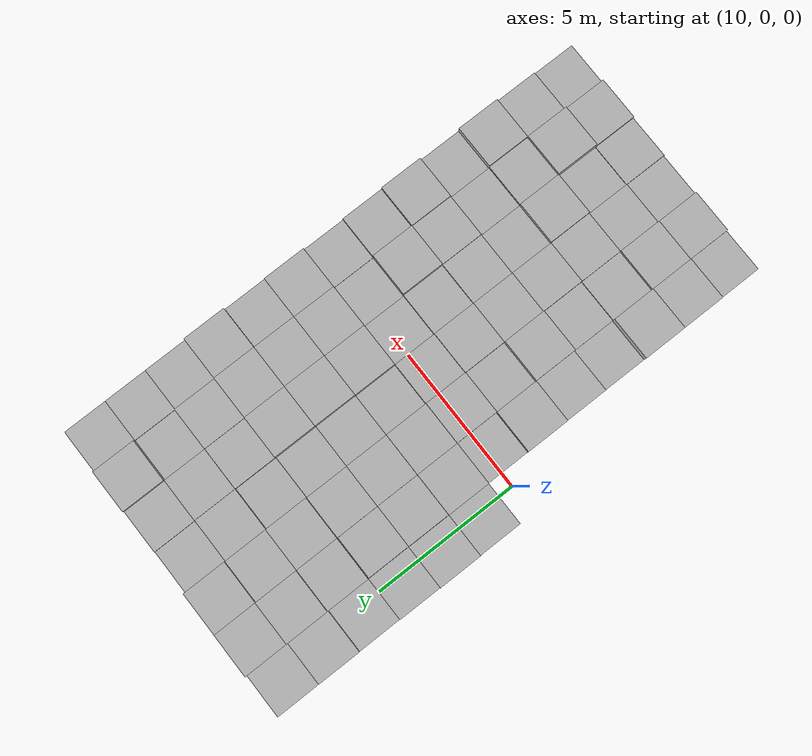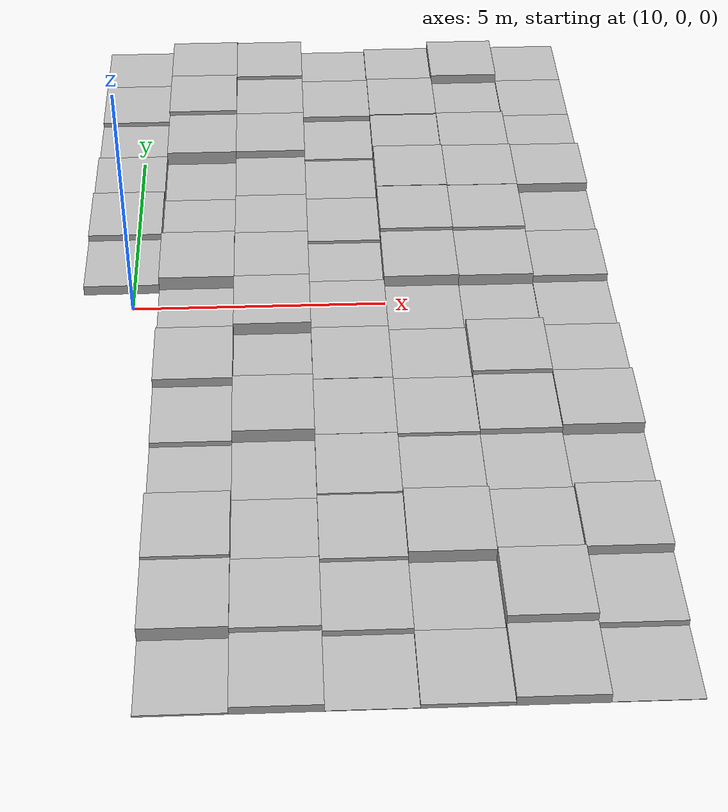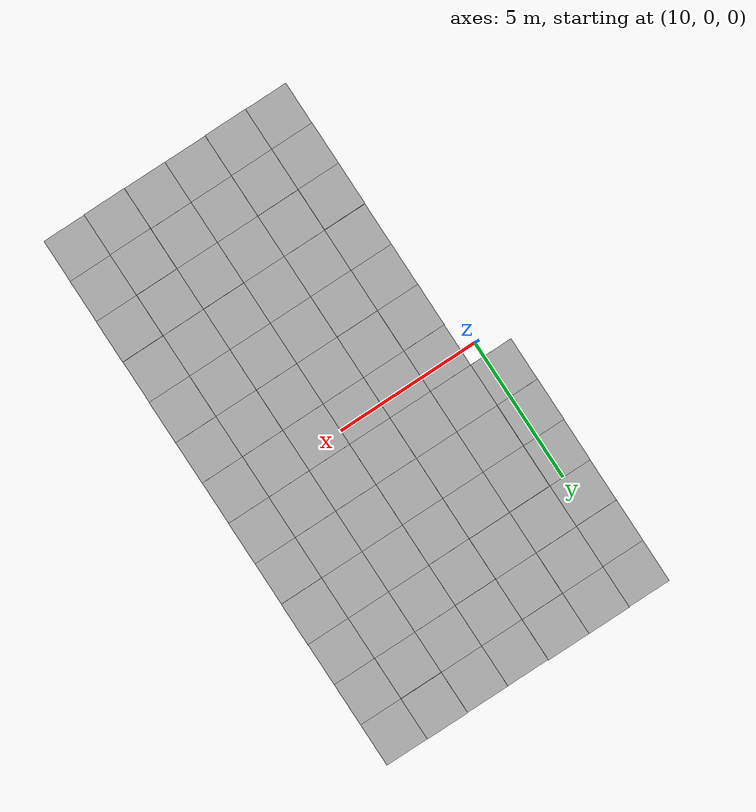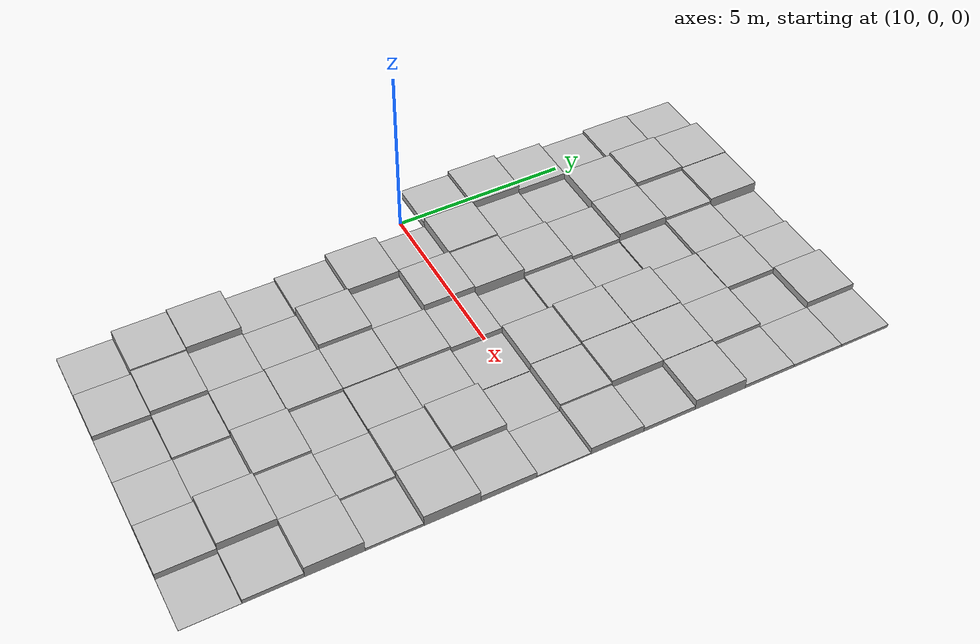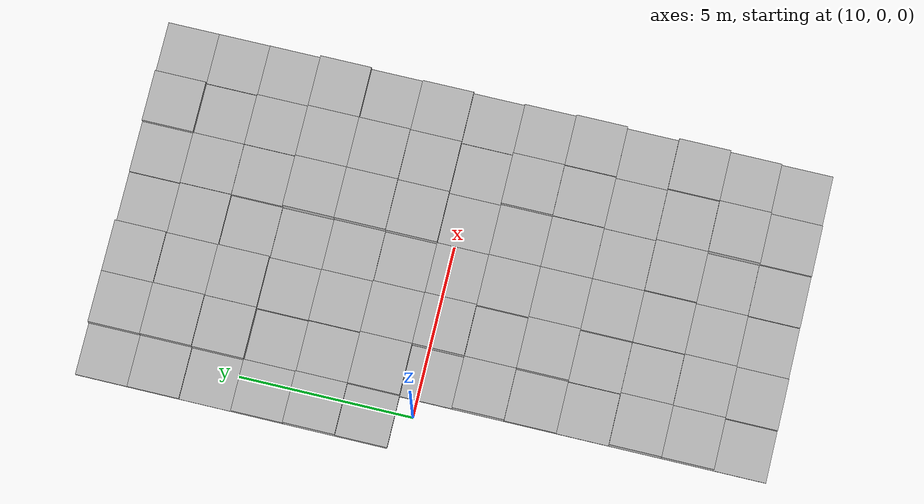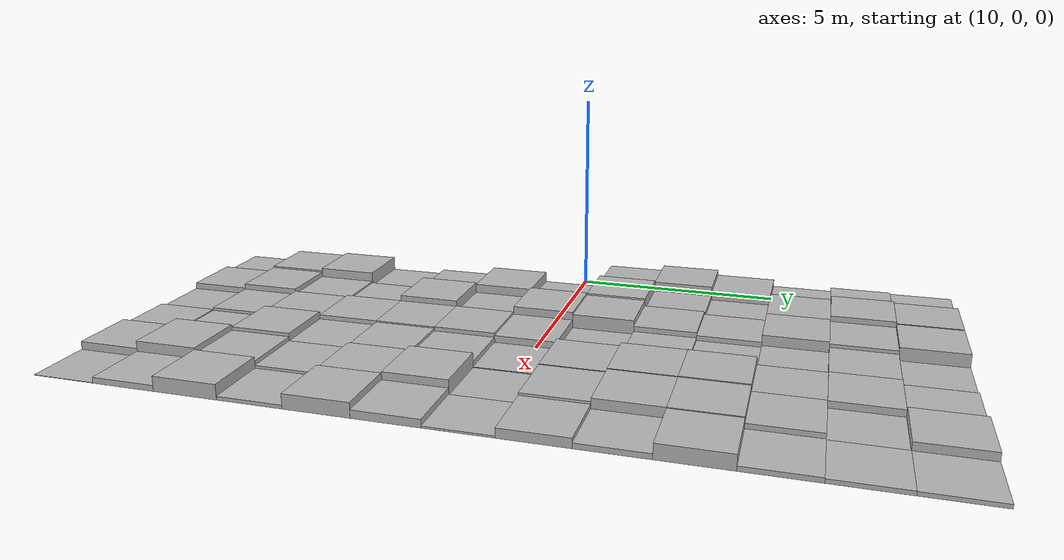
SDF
<sdf version="1.6">
 <model name="uneven_terrain">
  <static>true</static>
  <link name="block_0_7">
   <pose>11.25 -9.25 0.017387766525883232 0 0 0</pose>
   <collision name="collision">
    <geometry><box><size>1.5 1.5 0.034775533051766463</size></box></geometry>
   </collision>
   <visual name="visual">
    <geometry><box><size>1.5 1.5 0.034775533051766463</size></box></geometry>
    <material>
     <script><uri>file://media/materials/scripts/gazebo.material</uri><n>Gazebo/Grey</n></script>
    </material>
   </visual>
  </link>
  <link name="block_0_8">
   <pose>12.75 -9.25 0.08438436393705409 0 0 0</pose>
   <collision name="collision">
    <geometry><box><size>1.5 1.5 0.16876872787410818</size></box></geometry>
   </collision>
   <visual name="visual">
    <geometry><box><size>1.5 1.5 0.16876872787410818</size></box></geometry>
    <material>
     <script><uri>file://media/materials/scripts/gazebo.material</uri><n>Gazebo/Grey</n></script>
    </material>
   </visual>
  </link>
  <link name="block_0_9">
   <pose>14.25 -9.25 0.005959443887614069 0 0 0</pose>
   <collision name="collision">
    <geometry><box><size>1.5 1.5 0.011918887775228138</size></box></geometry>
   </collision>
   <visual name="visual">
    <geometry><box><size>1.5 1.5 0.011918887775228138</size></box></geometry>
    <material>
     <script><uri>file://media/materials/scripts/gazebo.material</uri><n>Gazebo/Grey</n></script>
    </material>
   </visual>
  </link>
  <link name="block_0_10">
   <pose>15.75 -9.25 0.04372759496072068 0 0 0</pose>
   <collision name="collision">
    <geometry><box><size>1.5 1.5 0.08745518992144136</size></box></geometry>
   </collision>
   <visual name="visual">
    <geometry><box><size>1.5 1.5 0.08745518992144136</size></box></geometry>
    <material>
     <script><uri>file://media/materials/scripts/gazebo.material</uri><n>Gazebo/Grey</n></script>
    </material>
   </visual>
  </link>
  <link name="block_0_11">
   <pose>17.25 -9.25 0.10107105762067248 0 0 0</pose>
   <collision name="collision">
    <geometry><box><size>1.5 1.5 0.20214211524134496</size></box></geometry>
   </collision>
   <visual name="visual">
    <geometry><box><size>1.5 1.5 0.20214211524134496</size></box></geometry>
    <material>
     <script><uri>file://media/materials/scripts/gazebo.material</uri><n>Gazebo/Grey</n></script>
    </material>
   </visual>
  </link>
  <link name="block_0_12">
   <pose>18.75 -9.25 0.005307193936772725 0 0 0</pose>
   <collision name="collision">
    <geometry><box><size>1.5 1.5 0.01061438787354545</size></box></geometry>
   </collision>
   <visual name="visual">
    <geometry><box><size>1.5 1.5 0.01061438787354545</size></box></geometry>
    <material>
     <script><uri>file://media/materials/scripts/gazebo.material</uri><n>Gazebo/Grey</n></script>
    </material>
   </visual>
  </link>
  <link name="block_1_7">
   <pose>11.25 -7.75 0.16116385036656158 0 0 0</pose>
   <collision name="collision">
    <geometry><box><size>1.5 1.5 0.32232770073312317</size></box></geometry>
   </collision>
   <visual name="visual">
    <geometry><box><size>1.5 1.5 0.32232770073312317</size></box></geometry>
    <material>
     <script><uri>file://media/materials/scripts/gazebo.material</uri><n>Gazebo/Grey</n></script>
    </material>
   </visual>
  </link>
  <link name="block_1_8">
   <pose>12.75 -7.75 0.13962787899764537 0 0 0</pose>
   <collision name="collision">
    <geometry><box><size>1.5 1.5 0.27925575799529073</size></box></geometry>
   </collision>
   <visual name="visual">
    <geometry><box><size>1.5 1.5 0.27925575799529073</size></box></geometry>
    <material>
     <script><uri>file://media/materials/scripts/gazebo.material</uri><n>Gazebo/Grey</n></script>
    </material>
   </visual>
  </link>
  <link name="block_1_9">
   <pose>14.25 -7.75 0.06805010330359838 0 0 0</pose>
   <collision name="collision">
    <geometry><box><size>1.5 1.5 0.13610020660719677</size></box></geometry>
   </collision>
   <visual name="visual">
    <geometry><box><size>1.5 1.5 0.13610020660719677</size></box></geometry>
    <material>
     <script><uri>file://media/materials/scripts/gazebo.material</uri><n>Gazebo/Grey</n></script>
    </material>
   </visual>
  </link>
  <link name="block_1_10">
   <pose>15.75 -7.75 0.031095899962356312 0 0 0</pose>
   <collision name="collision">
    <geometry><box><size>1.5 1.5 0.062191799924712625</size></box></geometry>
   </collision>
   <visual name="visual">
    <geometry><box><size>1.5 1.5 0.062191799924712625</size></box></geometry>
    <material>
     <script><uri>file://media/materials/scripts/gazebo.material</uri><n>Gazebo/Grey</n></script>
    </material>
   </visual>
  </link>
  <link name="block_1_11">
   <pose>17.25 -7.75 0.19144261444135624 0 0 0</pose>
   <collision name="collision">
    <geometry><box><size>1.5 1.5 0.3828852288827125</size></box></geometry>
   </collision>
   <visual name="visual">
    <geometry><box><size>1.5 1.5 0.3828852288827125</size></box></geometry>
    <material>
     <script><uri>file://media/materials/scripts/gazebo.material</uri><n>Gazebo/Grey</n></script>
    </material>
   </visual>
  </link>
  <link name="block_1_12">
   <pose>18.75 -7.75 0.06731890902252535 0 0 0</pose>
   <collision name="collision">
    <geometry><box><size>1.5 1.5 0.1346378180450507</size></box></geometry>
   </collision>
   <visual name="visual">
    <geometry><box><size>1.5 1.5 0.1346378180450507</size></box></geometry>
    <material>
     <script><uri>file://media/materials/scripts/gazebo.material</uri><n>Gazebo/Grey</n></script>
    </material>
   </visual>
  </link>
  <link name="block_2_7">
   <pose>11.25 -6.25 0.19462315279587414 0 0 0</pose>
   <collision name="collision">
    <geometry><box><size>1.5 1.5 0.3892463055917483</size></box></geometry>
   </collision>
   <visual name="visual">
    <geometry><box><size>1.5 1.5 0.3892463055917483</size></box></geometry>
    <material>
     <script><uri>file://media/materials/scripts/gazebo.material</uri><n>Gazebo/Grey</n></script>
    </material>
   </visual>
  </link>
  <link name="block_2_8">
   <pose>12.75 -6.25 0.0757068754416707 0 0 0</pose>
   <collision name="collision">
    <geometry><box><size>1.5 1.5 0.1514137508833414</size></box></geometry>
   </collision>
   <visual name="visual">
    <geometry><box><size>1.5 1.5 0.1514137508833414</size></box></geometry>
    <material>
     <script><uri>file://media/materials/scripts/gazebo.material</uri><n>Gazebo/Grey</n></script>
    </material>
   </visual>
  </link>
  <link name="block_2_9">
   <pose>14.25 -6.25 0.11040812625464541 0 0 0</pose>
   <collision name="collision">
    <geometry><box><size>1.5 1.5 0.22081625250929082</size></box></geometry>
   </collision>
   <visual name="visual">
    <geometry><box><size>1.5 1.5 0.22081625250929082</size></box></geometry>
    <material>
     <script><uri>file://media/materials/scripts/gazebo.material</uri><n>Gazebo/Grey</n></script>
    </material>
   </visual>
  </link>
  <link name="block_2_10">
   <pose>15.75 -6.25 0.165880932850599 0 0 0</pose>
   <collision name="collision"><geometry><box><size>1.5 1.5 0.331761865701198</size></box></geometry></collision>
   <visual name="visual">
    <geometry><box><size>1.5 1.5 0.331761865701198</size></box></geometry>
    <material>
     <script><uri>file://media/materials/scripts/gazebo.material</uri><n>Gazebo/Grey</n></script>
    </material>
   </visual>
  </link>
  <link name="block_2_11">
   <pose>17.25 -6.25 0.12370395047284921 0 0 0</pose>
   <collision name="collision">
    <geometry><box><size>1.5 1.5 0.24740790094569842</size></box></geometry>
   </collision>
   <visual name="visual">
    <geometry><box><size>1.5 1.5 0.24740790094569842</size></box></geometry>
    <material>
     <script><uri>file://media/materials/scripts/gazebo.material</uri><n>Gazebo/Grey</n></script>
    </material>
   </visual>
  </link>
  <link name="block_2_12">
   <pose>18.75 -6.25 0.17234138006215546 0 0 0</pose>
   <collision name="collision">
    <geometry><box><size>1.5 1.5 0.3446827601243109</size></box></geometry>
   </collision>
   <visual name="visual">
    <geometry><box><size>1.5 1.5 0.3446827601243109</size></box></geometry>
    <material>
     <script><uri>file://media/materials/scripts/gazebo.material</uri><n>Gazebo/Grey</n></script>
    </material>
   </visual>
  </link>
  <link name="block_3_7">
   <pose>11.25 -4.75 0.020200285881945824 0 0 0</pose>
   <collision name="collision">
    <geometry><box><size>1.5 1.5 0.04040057176389165</size></box></geometry>
   </collision>
   <visual name="visual">
    <geometry><box><size>1.5 1.5 0.04040057176389165</size></box></geometry>
    <material>
     <script><uri>file://media/materials/scripts/gazebo.material</uri><n>Gazebo/Grey</n></script>
    </material>
   </visual>
  </link>
  <link name="block_3_8">
   <pose>12.75 -4.75 0.05559472062201842 0 0 0</pose>
   <collision name="collision">
    <geometry><box><size>1.5 1.5 0.11118944124403685</size></box></geometry>
   </collision>
   <visual name="visual">
    <geometry><box><size>1.5 1.5 0.11118944124403685</size></box></geometry>
    <material>
     <script><uri>file://media/materials/scripts/gazebo.material</uri><n>Gazebo/Grey</n></script>
    </material>
   </visual>
  </link>
  <link name="block_3_9">
   <pose>14.25 -4.75 0.12713688885288005 0 0 0</pose>
   <collision name="collision">
    <geometry><box><size>1.5 1.5 0.2542737777057601</size></box></geometry>
   </collision>
   <visual name="visual">
    <geometry><box><size>1.5 1.5 0.2542737777057601</size></box></geometry>
    <material>
     <script><uri>file://media/materials/scripts/gazebo.material</uri><n>Gazebo/Grey</n></script>
    </material>
   </visual>
  </link>
  <link name="block_3_10">
   <pose>15.75 -4.75 0.07296643579401685 0 0 0</pose>
   <collision name="collision">
    <geometry><box><size>1.5 1.5 0.1459328715880337</size></box></geometry>
   </collision>
   <visual name="visual">
    <geometry><box><size>1.5 1.5 0.1459328715880337</size></box></geometry>
    <material>
     <script><uri>file://media/materials/scripts/gazebo.material</uri><n>Gazebo/Grey</n></script>
    </material>
   </visual>
  </link>
  <link name="block_3_11">
   <pose>17.25 -4.75 0.07403619342337653 0 0 0</pose>
   <collision name="collision">
    <geometry><box><size>1.5 1.5 0.14807238684675306</size></box></geometry>
   </collision>
   <visual name="visual">
    <geometry><box><size>1.5 1.5 0.14807238684675306</size></box></geometry>
    <material>
     <script><uri>file://media/materials/scripts/gazebo.material</uri><n>Gazebo/Grey</n></script>
    </material>
   </visual>
  </link>
  <link name="block_3_12">
   <pose>18.75 -4.75 0.04190140615429754 0 0 0</pose>
   <collision name="collision">
    <geometry><box><size>1.5 1.5 0.08380281230859508</size></box></geometry>
   </collision>
   <visual name="visual">
    <geometry><box><size>1.5 1.5 0.08380281230859508</size></box></geometry>
    <material>
     <script><uri>file://media/materials/scripts/gazebo.material</uri><n>Gazebo/Grey</n></script>
    </material>
   </visual>
  </link>
  <link name="block_4_7">
   <pose>11.25 -3.25 0.07589108835152956 0 0 0</pose>
   <collision name="collision">
    <geometry><box><size>1.5 1.5 0.15178217670305913</size></box></geometry>
   </collision>
   <visual name="visual">
    <geometry><box><size>1.5 1.5 0.15178217670305913</size></box></geometry>
    <material>
     <script><uri>file://media/materials/scripts/gazebo.material</uri><n>Gazebo/Grey</n></script>
    </material>
   </visual>
  </link>
  <link name="block_4_8">
   <pose>12.75 -3.25 0.19790467012731905 0 0 0</pose>
   <collision name="collision">
    <geometry><box><size>1.5 1.5 0.3958093402546381</size></box></geometry>
   </collision>
   <visual name="visual">
    <geometry><box><size>1.5 1.5 0.3958093402546381</size></box></geometry>
    <material>
     <script><uri>file://media/materials/scripts/gazebo.material</uri><n>Gazebo/Grey</n></script>
    </material>
   </visual>
  </link>
  <link name="block_4_9">
   <pose>14.25 -3.25 0.12799995197081857 0 0 0</pose>
   <collision name="collision">
    <geometry><box><size>1.5 1.5 0.25599990394163713</size></box></geometry>
   </collision>
   <visual name="visual">
    <geometry><box><size>1.5 1.5 0.25599990394163713</size></box></geometry>
    <material>
     <script><uri>file://media/materials/scripts/gazebo.material</uri><n>Gazebo/Grey</n></script>
    </material>
   </visual>
  </link>
  <link name="block_4_10">
   <pose>15.75 -3.25 0.11138994875492925 0 0 0</pose>
   <collision name="collision">
    <geometry><box><size>1.5 1.5 0.2227798975098585</size></box></geometry>
   </collision>
   <visual name="visual">
    <geometry><box><size>1.5 1.5 0.2227798975098585</size></box></geometry>
    <material>
     <script><uri>file://media/materials/scripts/gazebo.material</uri><n>Gazebo/Grey</n></script>
    </material>
   </visual>
  </link>
  <link name="block_4_11">
   <pose>17.25 -3.25 0.13692285019797493 0 0 0</pose>
   <collision name="collision">
    <geometry><box><size>1.5 1.5 0.27384570039594985</size></box></geometry>
   </collision>
   <visual name="visual">
    <geometry><box><size>1.5 1.5 0.27384570039594985</size></box></geometry>
    <material>
     <script><uri>file://media/materials/scripts/gazebo.material</uri><n>Gazebo/Grey</n></script>
    </material>
   </visual>
  </link>
  <link name="block_4_12">
   <pose>18.75 -3.25 0.16857038403796193 0 0 0</pose>
   <collision name="collision">
    <geometry><box><size>1.5 1.5 0.33714076807592386</size></box></geometry>
   </collision>
   <visual name="visual">
    <geometry><box><size>1.5 1.5 0.33714076807592386</size></box></geometry>
    <material>
     <script><uri>file://media/materials/scripts/gazebo.material</uri><n>Gazebo/Grey</n></script>
    </material>
   </visual>
  </link>
  <link name="block_5_7">
   <pose>11.25 -1.75 0.17527352529453377 0 0 0</pose>
   <collision name="collision">
    <geometry><box><size>1.5 1.5 0.35054705058906754</size></box></geometry>
   </collision>
   <visual name="visual">
    <geometry><box><size>1.5 1.5 0.35054705058906754</size></box></geometry>
    <material>
     <script><uri>file://media/materials/scripts/gazebo.material</uri><n>Gazebo/Grey</n></script>
    </material>
   </visual>
  </link>
  <link name="block_5_8">
   <pose>12.75 -1.75 0.06293557615969558 0 0 0</pose>
   <collision name="collision">
    <geometry><box><size>1.5 1.5 0.12587115231939117</size></box></geometry>
   </collision>
   <visual name="visual">
    <geometry><box><size>1.5 1.5 0.12587115231939117</size></box></geometry>
    <material>
     <script><uri>file://media/materials/scripts/gazebo.material</uri><n>Gazebo/Grey</n></script>
    </material>
   </visual>
  </link>
  <link name="block_5_9">
   <pose>14.25 -1.75 0.131087733058976 0 0 0</pose>
   <collision name="collision"><geometry><box><size>1.5 1.5 0.262175466117952</size></box></geometry></collision>
   <visual name="visual">
    <geometry><box><size>1.5 1.5 0.262175466117952</size></box></geometry>
    <material>
     <script><uri>file://media/materials/scripts/gazebo.material</uri><n>Gazebo/Grey</n></script>
    </material>
   </visual>
  </link>
  <link name="block_5_10">
   <pose>15.75 -1.75 0.07912638021213286 0 0 0</pose>
   <collision name="collision">
    <geometry><box><size>1.5 1.5 0.15825276042426573</size></box></geometry>
   </collision>
   <visual name="visual">
    <geometry><box><size>1.5 1.5 0.15825276042426573</size></box></geometry>
    <material>
     <script><uri>file://media/materials/scripts/gazebo.material</uri><n>Gazebo/Grey</n></script>
    </material>
   </visual>
  </link>
  <link name="block_5_11">
   <pose>17.25 -1.75 0.18290951794810872 0 0 0</pose>
   <collision name="collision">
    <geometry><box><size>1.5 1.5 0.36581903589621745</size></box></geometry>
   </collision>
   <visual name="visual">
    <geometry><box><size>1.5 1.5 0.36581903589621745</size></box></geometry>
    <material>
     <script><uri>file://media/materials/scripts/gazebo.material</uri><n>Gazebo/Grey</n></script>
    </material>
   </visual>
  </link>
  <link name="block_5_12">
   <pose>18.75 -1.75 0.09177037051747977 0 0 0</pose>
   <collision name="collision">
    <geometry><box><size>1.5 1.5 0.18354074103495954</size></box></geometry>
   </collision>
   <visual name="visual">
    <geometry><box><size>1.5 1.5 0.18354074103495954</size></box></geometry>
    <material>
     <script><uri>file://media/materials/scripts/gazebo.material</uri><n>Gazebo/Grey</n></script>
    </material>
   </visual>
  </link>
  <link name="block_6_7">
   <pose>11.25 -0.25 0.04386415183145667 0 0 0</pose>
   <collision name="collision">
    <geometry><box><size>1.5 1.5 0.08772830366291334</size></box></geometry>
   </collision>
   <visual name="visual">
    <geometry><box><size>1.5 1.5 0.08772830366291334</size></box></geometry>
    <material>
     <script><uri>file://media/materials/scripts/gazebo.material</uri><n>Gazebo/Grey</n></script>
    </material>
   </visual>
  </link>
  <link name="block_6_8">
   <pose>12.75 -0.25 0.19950752129902205 0 0 0</pose>
   <collision name="collision">
    <geometry><box><size>1.5 1.5 0.3990150425980441</size></box></geometry>
   </collision>
   <visual name="visual">
    <geometry><box><size>1.5 1.5 0.3990150425980441</size></box></geometry>
    <material>
     <script><uri>file://media/materials/scripts/gazebo.material</uri><n>Gazebo/Grey</n></script>
    </material>
   </visual>
  </link>
  <link name="block_6_9">
   <pose>14.25 -0.25 0.10190525873529291 0 0 0</pose>
   <collision name="collision">
    <geometry><box><size>1.5 1.5 0.20381051747058582</size></box></geometry>
   </collision>
   <visual name="visual">
    <geometry><box><size>1.5 1.5 0.20381051747058582</size></box></geometry>
    <material>
     <script><uri>file://media/materials/scripts/gazebo.material</uri><n>Gazebo/Grey</n></script>
    </material>
   </visual>
  </link>
  <link name="block_6_10">
   <pose>15.75 -0.25 0.018181882434758777 0 0 0</pose>
   <collision name="collision">
    <geometry><box><size>1.5 1.5 0.036363764869517555</size></box></geometry>
   </collision>
   <visual name="visual">
    <geometry><box><size>1.5 1.5 0.036363764869517555</size></box></geometry>
    <material>
     <script><uri>file://media/materials/scripts/gazebo.material</uri><n>Gazebo/Grey</n></script>
    </material>
   </visual>
  </link>
  <link name="block_6_11">
   <pose>17.25 -0.25 0.009423275084946914 0 0 0</pose>
   <collision name="collision">
    <geometry><box><size>1.5 1.5 0.01884655016989383</size></box></geometry>
   </collision>
   <visual name="visual">
    <geometry><box><size>1.5 1.5 0.01884655016989383</size></box></geometry>
    <material>
     <script><uri>file://media/materials/scripts/gazebo.material</uri><n>Gazebo/Grey</n></script>
    </material>
   </visual>
  </link>
  <link name="block_6_12">
   <pose>18.75 -0.25 0.02192982607013183 0 0 0</pose>
   <collision name="collision">
    <geometry><box><size>1.5 1.5 0.04385965214026366</size></box></geometry>
   </collision>
   <visual name="visual">
    <geometry><box><size>1.5 1.5 0.04385965214026366</size></box></geometry>
    <material>
     <script><uri>file://media/materials/scripts/gazebo.material</uri><n>Gazebo/Grey</n></script>
    </material>
   </visual>
  </link>
  <link name="block_7_6">
   <pose>9.75 1.25 0.1058228690198274 0 0 0</pose>
   <collision name="collision">
    <geometry><box><size>1.5 1.5 0.2116457380396548</size></box></geometry>
   </collision>
   <visual name="visual">
    <geometry><box><size>1.5 1.5 0.2116457380396548</size></box></geometry>
    <material>
     <script><uri>file://media/materials/scripts/gazebo.material</uri><n>Gazebo/Grey</n></script>
    </material>
   </visual>
  </link>
  <link name="block_7_7">
   <pose>11.25 1.25 0.19421567552272365 0 0 0</pose>
   <collision name="collision">
    <geometry><box><size>1.5 1.5 0.3884313510454473</size></box></geometry>
   </collision>
   <visual name="visual">
    <geometry><box><size>1.5 1.5 0.3884313510454473</size></box></geometry>
    <material>
     <script><uri>file://media/materials/scripts/gazebo.material</uri><n>Gazebo/Grey</n></script>
    </material>
   </visual>
  </link>
  <link name="block_7_8">
   <pose>12.75 1.25 0.17215594044689964 0 0 0</pose>
   <collision name="collision">
    <geometry><box><size>1.5 1.5 0.34431188089379927</size></box></geometry>
   </collision>
   <visual name="visual">
    <geometry><box><size>1.5 1.5 0.34431188089379927</size></box></geometry>
    <material>
     <script><uri>file://media/materials/scripts/gazebo.material</uri><n>Gazebo/Grey</n></script>
    </material>
   </visual>
  </link>
  <link name="block_7_9">
   <pose>14.25 1.25 0.002296204388563927 0 0 0</pose>
   <collision name="collision">
    <geometry><box><size>1.5 1.5 0.004592408777127854</size></box></geometry>
   </collision>
   <visual name="visual">
    <geometry><box><size>1.5 1.5 0.004592408777127854</size></box></geometry>
    <material>
     <script><uri>file://media/materials/scripts/gazebo.material</uri><n>Gazebo/Grey</n></script>
    </material>
   </visual>
  </link>
  <link name="block_7_10">
   <pose>15.75 1.25 0.14414436387203894 0 0 0</pose>
   <collision name="collision">
    <geometry><box><size>1.5 1.5 0.2882887277440779</size></box></geometry>
   </collision>
   <visual name="visual">
    <geometry><box><size>1.5 1.5 0.2882887277440779</size></box></geometry>
    <material>
     <script><uri>file://media/materials/scripts/gazebo.material</uri><n>Gazebo/Grey</n></script>
    </material>
   </visual>
  </link>
  <link name="block_7_11">
   <pose>17.25 1.25 0.13634207380531496 0 0 0</pose>
   <collision name="collision">
    <geometry><box><size>1.5 1.5 0.2726841476106299</size></box></geometry>
   </collision>
   <visual name="visual">
    <geometry><box><size>1.5 1.5 0.2726841476106299</size></box></geometry>
    <material>
     <script><uri>file://media/materials/scripts/gazebo.material</uri><n>Gazebo/Grey</n></script>
    </material>
   </visual>
  </link>
  <link name="block_7_12">
   <pose>18.75 1.25 0.10739406608175904 0 0 0</pose>
   <collision name="collision">
    <geometry><box><size>1.5 1.5 0.21478813216351808</size></box></geometry>
   </collision>
   <visual name="visual">
    <geometry><box><size>1.5 1.5 0.21478813216351808</size></box></geometry>
    <material>
     <script><uri>file://media/materials/scripts/gazebo.material</uri><n>Gazebo/Grey</n></script>
    </material>
   </visual>
  </link>
  <link name="block_8_6">
   <pose>9.75 2.75 0.17517058807563882 0 0 0</pose>
   <collision name="collision">
    <geometry><box><size>1.5 1.5 0.35034117615127763</size></box></geometry>
   </collision>
   <visual name="visual">
    <geometry><box><size>1.5 1.5 0.35034117615127763</size></box></geometry>
    <material>
     <script><uri>file://media/materials/scripts/gazebo.material</uri><n>Gazebo/Grey</n></script>
    </material>
   </visual>
  </link>
  <link name="block_8_7">
   <pose>11.25 2.75 0.052677810150218156 0 0 0</pose>
   <collision name="collision">
    <geometry><box><size>1.5 1.5 0.10535562030043631</size></box></geometry>
   </collision>
   <visual name="visual">
    <geometry><box><size>1.5 1.5 0.10535562030043631</size></box></geometry>
    <material>
     <script><uri>file://media/materials/scripts/gazebo.material</uri><n>Gazebo/Grey</n></script>
    </material>
   </visual>
  </link>
  <link name="block_8_8">
   <pose>12.75 2.75 0.10011722261005968 0 0 0</pose>
   <collision name="collision">
    <geometry><box><size>1.5 1.5 0.20023444522011935</size></box></geometry>
   </collision>
   <visual name="visual">
    <geometry><box><size>1.5 1.5 0.20023444522011935</size></box></geometry>
    <material>
     <script><uri>file://media/materials/scripts/gazebo.material</uri><n>Gazebo/Grey</n></script>
    </material>
   </visual>
  </link>
  <link name="block_8_9">
   <pose>14.25 2.75 0.03573037610602627 0 0 0</pose>
   <collision name="collision">
    <geometry><box><size>1.5 1.5 0.07146075221205254</size></box></geometry>
   </collision>
   <visual name="visual">
    <geometry><box><size>1.5 1.5 0.07146075221205254</size></box></geometry>
    <material>
     <script><uri>file://media/materials/scripts/gazebo.material</uri><n>Gazebo/Grey</n></script>
    </material>
   </visual>
  </link>
  <link name="block_8_10">
   <pose>15.75 2.75 0.18252556786896412 0 0 0</pose>
   <collision name="collision">
    <geometry><box><size>1.5 1.5 0.36505113573792825</size></box></geometry>
   </collision>
   <visual name="visual">
    <geometry><box><size>1.5 1.5 0.36505113573792825</size></box></geometry>
    <material>
     <script><uri>file://media/materials/scripts/gazebo.material</uri><n>Gazebo/Grey</n></script>
    </material>
   </visual>
  </link>
  <link name="block_8_11">
   <pose>17.25 2.75 0.17410371396735339 0 0 0</pose>
   <collision name="collision">
    <geometry><box><size>1.5 1.5 0.34820742793470677</size></box></geometry>
   </collision>
   <visual name="visual">
    <geometry><box><size>1.5 1.5 0.34820742793470677</size></box></geometry>
    <material>
     <script><uri>file://media/materials/scripts/gazebo.material</uri><n>Gazebo/Grey</n></script>
    </material>
   </visual>
  </link>
  <link name="block_8_12">
   <pose>18.75 2.75 0.05968895828972658 0 0 0</pose>
   <collision name="collision">
    <geometry><box><size>1.5 1.5 0.11937791657945317</size></box></geometry>
   </collision>
   <visual name="visual">
    <geometry><box><size>1.5 1.5 0.11937791657945317</size></box></geometry>
    <material>
     <script><uri>file://media/materials/scripts/gazebo.material</uri><n>Gazebo/Grey</n></script>
    </material>
   </visual>
  </link>
  <link name="block_9_6">
   <pose>9.75 4.25 0.1060707344390355 0 0 0</pose>
   <collision name="collision"><geometry><box><size>1.5 1.5 0.212141468878071</size></box></geometry></collision>
   <visual name="visual">
    <geometry><box><size>1.5 1.5 0.212141468878071</size></box></geometry>
    <material>
     <script><uri>file://media/materials/scripts/gazebo.material</uri><n>Gazebo/Grey</n></script>
    </material>
   </visual>
  </link>
  <link name="block_9_7">
   <pose>11.25 4.25 0.00011437922558870106 0 0 0</pose>
   <collision name="collision">
    <geometry><box><size>1.5 1.5 0.00022875845117740213</size></box></geometry>
   </collision>
   <visual name="visual">
    <geometry><box><size>1.5 1.5 0.00022875845117740213</size></box></geometry>
    <material>
     <script><uri>file://media/materials/scripts/gazebo.material</uri><n>Gazebo/Grey</n></script>
    </material>
   </visual>
  </link>
  <link name="block_9_8">
   <pose>12.75 4.25 0.06483121140093462 0 0 0</pose>
   <collision name="collision">
    <geometry><box><size>1.5 1.5 0.12966242280186924</size></box></geometry>
   </collision>
   <visual name="visual">
    <geometry><box><size>1.5 1.5 0.12966242280186924</size></box></geometry>
    <material>
     <script><uri>file://media/materials/scripts/gazebo.material</uri><n>Gazebo/Grey</n></script>
    </material>
   </visual>
  </link>
  <link name="block_9_9">
   <pose>14.25 4.25 0.0038953484771664607 0 0 0</pose>
   <collision name="collision">
    <geometry><box><size>1.5 1.5 0.0077906969543329214</size></box></geometry>
   </collision>
   <visual name="visual">
    <geometry><box><size>1.5 1.5 0.0077906969543329214</size></box></geometry>
    <material>
     <script><uri>file://media/materials/scripts/gazebo.material</uri><n>Gazebo/Grey</n></script>
    </material>
   </visual>
  </link>
  <link name="block_9_10">
   <pose>15.75 4.25 0.18581972325292342 0 0 0</pose>
   <collision name="collision">
    <geometry><box><size>1.5 1.5 0.37163944650584685</size></box></geometry>
   </collision>
   <visual name="visual">
    <geometry><box><size>1.5 1.5 0.37163944650584685</size></box></geometry>
    <material>
     <script><uri>file://media/materials/scripts/gazebo.material</uri><n>Gazebo/Grey</n></script>
    </material>
   </visual>
  </link>
  <link name="block_9_11">
   <pose>17.25 4.25 0.17574437556463685 0 0 0</pose>
   <collision name="collision">
    <geometry><box><size>1.5 1.5 0.3514887511292737</size></box></geometry>
   </collision>
   <visual name="visual">
    <geometry><box><size>1.5 1.5 0.3514887511292737</size></box></geometry>
    <material>
     <script><uri>file://media/materials/scripts/gazebo.material</uri><n>Gazebo/Grey</n></script>
    </material>
   </visual>
  </link>
  <link name="block_9_12">
   <pose>18.75 4.25 0.1663331058722359 0 0 0</pose>
   <collision name="collision">
    <geometry><box><size>1.5 1.5 0.3326662117444718</size></box></geometry>
   </collision>
   <visual name="visual">
    <geometry><box><size>1.5 1.5 0.3326662117444718</size></box></geometry>
    <material>
     <script><uri>file://media/materials/scripts/gazebo.material</uri><n>Gazebo/Grey</n></script>
    </material>
   </visual>
  </link>
  <link name="block_10_6">
   <pose>9.75 5.75 0.013842503693676723 0 0 0</pose>
   <collision name="collision">
    <geometry><box><size>1.5 1.5 0.027685007387353446</size></box></geometry>
   </collision>
   <visual name="visual">
    <geometry><box><size>1.5 1.5 0.027685007387353446</size></box></geometry>
    <material>
     <script><uri>file://media/materials/scripts/gazebo.material</uri><n>Gazebo/Grey</n></script>
    </material>
   </visual>
  </link>
  <link name="block_10_7">
   <pose>11.25 5.75 0.15212043305144632 0 0 0</pose>
   <collision name="collision">
    <geometry><box><size>1.5 1.5 0.30424086610289264</size></box></geometry>
   </collision>
   <visual name="visual">
    <geometry><box><size>1.5 1.5 0.30424086610289264</size></box></geometry>
    <material>
     <script><uri>file://media/materials/scripts/gazebo.material</uri><n>Gazebo/Grey</n></script>
    </material>
   </visual>
  </link>
  <link name="block_10_8">
   <pose>12.75 5.75 0.15316688586139757 0 0 0</pose>
   <collision name="collision">
    <geometry><box><size>1.5 1.5 0.30633377172279513</size></box></geometry>
   </collision>
   <visual name="visual">
    <geometry><box><size>1.5 1.5 0.30633377172279513</size></box></geometry>
    <material>
     <script><uri>file://media/materials/scripts/gazebo.material</uri><n>Gazebo/Grey</n></script>
    </material>
   </visual>
  </link>
  <link name="block_10_9">
   <pose>14.25 5.75 0.025678292899952562 0 0 0</pose>
   <collision name="collision">
    <geometry><box><size>1.5 1.5 0.051356585799905125</size></box></geometry>
   </collision>
   <visual name="visual">
    <geometry><box><size>1.5 1.5 0.051356585799905125</size></box></geometry>
    <material>
     <script><uri>file://media/materials/scripts/gazebo.material</uri><n>Gazebo/Grey</n></script>
    </material>
   </visual>
  </link>
  <link name="block_10_10">
   <pose>15.75 5.75 0.09505647561974627 0 0 0</pose>
   <collision name="collision">
    <geometry><box><size>1.5 1.5 0.19011295123949254</size></box></geometry>
   </collision>
   <visual name="visual">
    <geometry><box><size>1.5 1.5 0.19011295123949254</size></box></geometry>
    <material>
     <script><uri>file://media/materials/scripts/gazebo.material</uri><n>Gazebo/Grey</n></script>
    </material>
   </visual>
  </link>
  <link name="block_10_11">
   <pose>17.25 5.75 0.10996071869898878 0 0 0</pose>
   <collision name="collision">
    <geometry><box><size>1.5 1.5 0.21992143739797756</size></box></geometry>
   </collision>
   <visual name="visual">
    <geometry><box><size>1.5 1.5 0.21992143739797756</size></box></geometry>
    <material>
     <script><uri>file://media/materials/scripts/gazebo.material</uri><n>Gazebo/Grey</n></script>
    </material>
   </visual>
  </link>
  <link name="block_10_12">
   <pose>18.75 5.75 0.05301132578801182 0 0 0</pose>
   <collision name="collision">
    <geometry><box><size>1.5 1.5 0.10602265157602364</size></box></geometry>
   </collision>
   <visual name="visual">
    <geometry><box><size>1.5 1.5 0.10602265157602364</size></box></geometry>
    <material>
     <script><uri>file://media/materials/scripts/gazebo.material</uri><n>Gazebo/Grey</n></script>
    </material>
   </visual>
  </link>
  <link name="block_11_6">
   <pose>9.75 7.25 0.062343258260178995 0 0 0</pose>
   <collision name="collision">
    <geometry><box><size>1.5 1.5 0.12468651652035799</size></box></geometry>
   </collision>
   <visual name="visual">
    <geometry><box><size>1.5 1.5 0.12468651652035799</size></box></geometry>
    <material>
     <script><uri>file://media/materials/scripts/gazebo.material</uri><n>Gazebo/Grey</n></script>
    </material>
   </visual>
  </link>
  <link name="block_11_7">
   <pose>11.25 7.25 0.19902987133217895 0 0 0</pose>
   <collision name="collision">
    <geometry><box><size>1.5 1.5 0.3980597426643579</size></box></geometry>
   </collision>
   <visual name="visual">
    <geometry><box><size>1.5 1.5 0.3980597426643579</size></box></geometry>
    <material>
     <script><uri>file://media/materials/scripts/gazebo.material</uri><n>Gazebo/Grey</n></script>
    </material>
   </visual>
  </link>
  <link name="block_11_8">
   <pose>12.75 7.25 0.1299756115278907 0 0 0</pose>
   <collision name="collision">
    <geometry><box><size>1.5 1.5 0.2599512230557814</size></box></geometry>
   </collision>
   <visual name="visual">
    <geometry><box><size>1.5 1.5 0.2599512230557814</size></box></geometry>
    <material>
     <script><uri>file://media/materials/scripts/gazebo.material</uri><n>Gazebo/Grey</n></script>
    </material>
   </visual>
  </link>
  <link name="block_11_9">
   <pose>14.25 7.25 0.08762001678290082 0 0 0</pose>
   <collision name="collision">
    <geometry><box><size>1.5 1.5 0.17524003356580165</size></box></geometry>
   </collision>
   <visual name="visual">
    <geometry><box><size>1.5 1.5 0.17524003356580165</size></box></geometry>
    <material>
     <script><uri>file://media/materials/scripts/gazebo.material</uri><n>Gazebo/Grey</n></script>
    </material>
   </visual>
  </link>
  <link name="block_11_10">
   <pose>15.75 7.25 0.10351516820711813 0 0 0</pose>
   <collision name="collision">
    <geometry><box><size>1.5 1.5 0.20703033641423627</size></box></geometry>
   </collision>
   <visual name="visual">
    <geometry><box><size>1.5 1.5 0.20703033641423627</size></box></geometry>
    <material>
     <script><uri>file://media/materials/scripts/gazebo.material</uri><n>Gazebo/Grey</n></script>
    </material>
   </visual>
  </link>
  <link name="block_11_11">
   <pose>17.25 7.25 0.024200839173653146 0 0 0</pose>
   <collision name="collision">
    <geometry><box><size>1.5 1.5 0.04840167834730629</size></box></geometry>
   </collision>
   <visual name="visual">
    <geometry><box><size>1.5 1.5 0.04840167834730629</size></box></geometry>
    <material>
     <script><uri>file://media/materials/scripts/gazebo.material</uri><n>Gazebo/Grey</n></script>
    </material>
   </visual>
  </link>
  <link name="block_11_12">
   <pose>18.75 7.25 0.044939467406311474 0 0 0</pose>
   <collision name="collision">
    <geometry><box><size>1.5 1.5 0.08987893481262295</size></box></geometry>
   </collision>
   <visual name="visual">
    <geometry><box><size>1.5 1.5 0.08987893481262295</size></box></geometry>
    <material>
     <script><uri>file://media/materials/scripts/gazebo.material</uri><n>Gazebo/Grey</n></script>
    </material>
   </visual>
  </link>
  <link name="block_12_6">
   <pose>9.75 8.75 0.04578835676223088 0 0 0</pose>
   <collision name="collision">
    <geometry><box><size>1.5 1.5 0.09157671352446176</size></box></geometry>
   </collision>
   <visual name="visual">
    <geometry><box><size>1.5 1.5 0.09157671352446176</size></box></geometry>
    <material>
     <script><uri>file://media/materials/scripts/gazebo.material</uri><n>Gazebo/Grey</n></script>
    </material>
   </visual>
  </link>
  <link name="block_12_7">
   <pose>11.25 8.75 0.1810840026012256 0 0 0</pose>
   <collision name="collision">
    <geometry><box><size>1.5 1.5 0.3621680052024512</size></box></geometry>
   </collision>
   <visual name="visual">
    <geometry><box><size>1.5 1.5 0.3621680052024512</size></box></geometry>
    <material>
     <script><uri>file://media/materials/scripts/gazebo.material</uri><n>Gazebo/Grey</n></script>
    </material>
   </visual>
  </link>
  <link name="block_12_8">
   <pose>12.75 8.75 0.1719270800507493 0 0 0</pose>
   <collision name="collision">
    <geometry><box><size>1.5 1.5 0.3438541601014986</size></box></geometry>
   </collision>
   <visual name="visual">
    <geometry><box><size>1.5 1.5 0.3438541601014986</size></box></geometry>
    <material>
     <script><uri>file://media/materials/scripts/gazebo.material</uri><n>Gazebo/Grey</n></script>
    </material>
   </visual>
  </link>
  <link name="block_12_9">
   <pose>14.25 8.75 0.014171469977730689 0 0 0</pose>
   <collision name="collision">
    <geometry><box><size>1.5 1.5 0.028342939955461378</size></box></geometry>
   </collision>
   <visual name="visual">
    <geometry><box><size>1.5 1.5 0.028342939955461378</size></box></geometry>
    <material>
     <script><uri>file://media/materials/scripts/gazebo.material</uri><n>Gazebo/Grey</n></script>
    </material>
   </visual>
  </link>
  <link name="block_12_10">
   <pose>15.75 8.75 0.04760092687379905 0 0 0</pose>
   <collision name="collision">
    <geometry><box><size>1.5 1.5 0.0952018537475981</size></box></geometry>
   </collision>
   <visual name="visual">
    <geometry><box><size>1.5 1.5 0.0952018537475981</size></box></geometry>
    <material>
     <script><uri>file://media/materials/scripts/gazebo.material</uri><n>Gazebo/Grey</n></script>
    </material>
   </visual>
  </link>
  <link name="block_12_11">
   <pose>17.25 8.75 0.13379555565925613 0 0 0</pose>
   <collision name="collision">
    <geometry><box><size>1.5 1.5 0.26759111131851226</size></box></geometry>
   </collision>
   <visual name="visual">
    <geometry><box><size>1.5 1.5 0.26759111131851226</size></box></geometry>
    <material>
     <script><uri>file://media/materials/scripts/gazebo.material</uri><n>Gazebo/Grey</n></script>
    </material>
   </visual>
  </link>
  <link name="block_12_12">
   <pose>18.75 8.75 0.04284736147408772 0 0 0</pose>
   <collision name="collision">
    <geometry><box><size>1.5 1.5 0.08569472294817544</size></box></geometry>
   </collision>
   <visual name="visual">
    <geometry><box><size>1.5 1.5 0.08569472294817544</size></box></geometry>
    <material>
     <script><uri>file://media/materials/scripts/gazebo.material</uri><n>Gazebo/Grey</n></script>
    </material>
   </visual>
  </link>
 </model>
</sdf>
